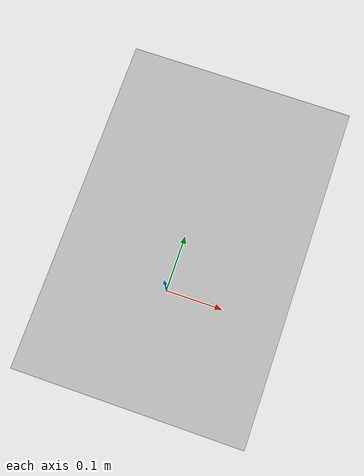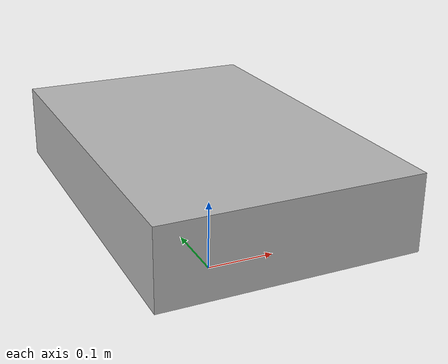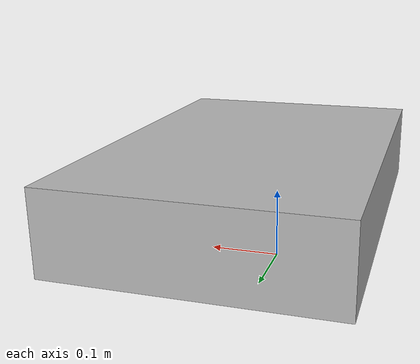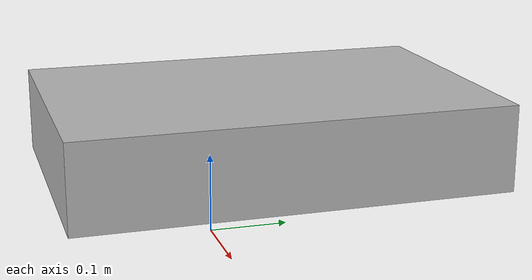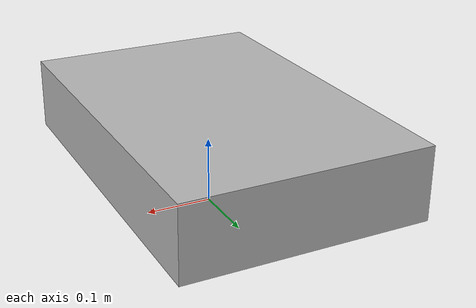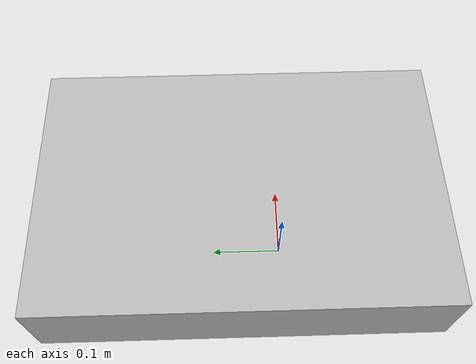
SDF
<sdf version="1.6">
    <model name="car_scene5_real">
        <allow_auto_disable>true</allow_auto_disable>
        <link name="Cube">
            <kinematic>true</kinematic>
            <pose>0.017 0.058 0.136 -1.5707 0 0</pose>
            <visual name="visual">
                <geometry>
                    <box>
                        <size>0.347 0.105 0.522</size>
                    </box>
                </geometry>
            </visual>
        </link>
    </model>
</sdf>
